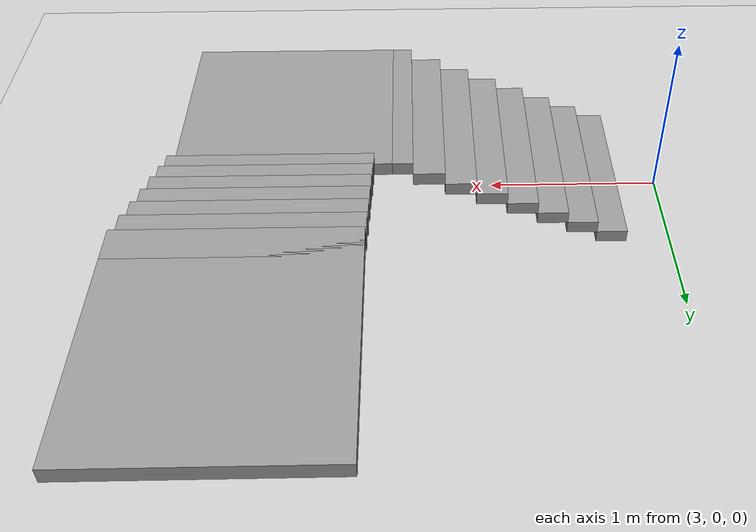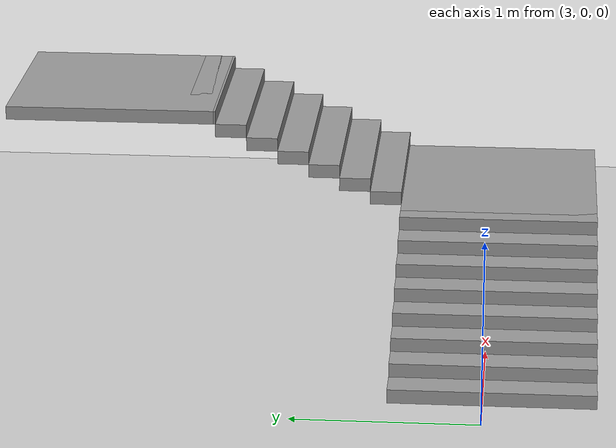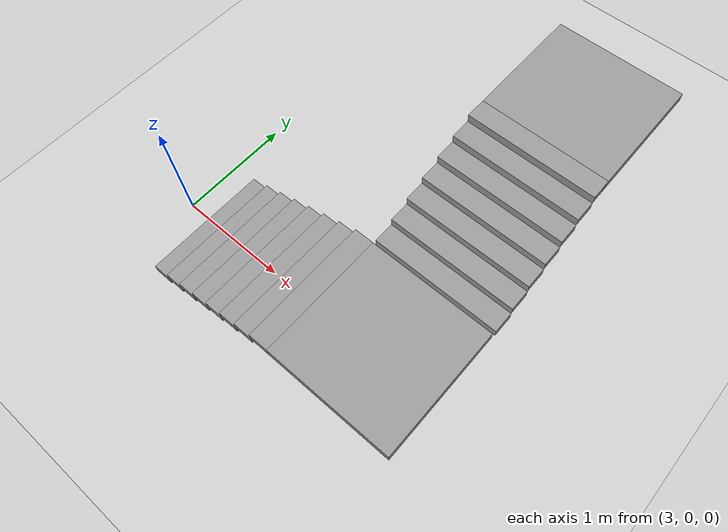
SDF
<?xml version="1.0" ?>
<sdf version="1.4">
  <world name="default">
    <include>
      <uri>model://ground_plane</uri>
    </include>

    <include>
      <uri>model://sun</uri>
    </include>
    <include>
      <uri>model://stairs3</uri>
    </include>

    <gui>
      <plugin name="keyboard" filename="libKeyboardGUIPlugin.so"/>
    </gui>
  </world>
</sdf>

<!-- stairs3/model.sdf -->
<sdf version='1.6'>
 <model name='stairs_environment3'>
            <pose frame=''>5 -0.05 0 0 0 1.57</pose>
            <link name='Stairs_3'>
                <visual name='Stairs_3_Visual_0'>
                    <pose frame=''>0 1.6625 0.0375 0 -0 0</pose>
                    <geometry>
                        <box>
                            <size>1.1 0.175 0.075</size>
                        </box>
                    </geometry>
                    <material>
                        <script>
                            <uri>file://media/materials/scripts/gazebo.material</uri>
                            <name>Gazebo/Grey</name>
                        </script>
                        <ambient>1 1 1 1</ambient>
                    </material>
                    <meta>
                        <layer>0</layer>
                    </meta>
                </visual>
                <collision name='Stairs_3_Collision_0'>
                    <geometry>
                        <box>
                            <size>1.1 0.175 0.075</size>
                        </box>
                    </geometry>
                    <pose frame=''>0 1.6625 0.0375 0 -0 0</pose>
                    <surface>
                      <friction>
                      <ode>
                          <mu>0.95</mu>
                          <mu2>0.95</mu2>
                      </ode>
                      </friction>
                  </surface>
                </collision>
                <visual name='Stairs_3_Visual_1'>
                    <pose frame=''>0 1.4875 0.1125 0 -0 0</pose>
                    <geometry>
                        <box>
                            <size>1.1 0.175 0.075</size>
                        </box>
                    </geometry>
                    <material>
                        <script>
                            <uri>file://media/materials/scripts/gazebo.material</uri>
                            <name>Gazebo/Grey</name>
                        </script>
                        <ambient>1 1 1 1</ambient>
                    </material>
                    <meta>
                        <layer>0</layer>
                    </meta>
                </visual>
                <collision name='Stairs_3_Collision_1'>
                    <geometry>
                        <box>
                            <size>1.1 0.175 0.075</size>
                        </box>
                    </geometry>
                    <pose frame=''>0 1.4875 0.1125 0 -0 0</pose>
                    <surface>
                      <friction>
                      <ode>
                          <mu>0.95</mu>
                          <mu2>0.95</mu2>
                      </ode>
                      </friction>
                  </surface>
                </collision>
                <visual name='Stairs_3_Visual_2'>
                    <pose frame=''>0 1.3125 0.1875 0 -0 0</pose>
                    <geometry>
                        <box>
                            <size>1.1 0.175 0.075</size>
                        </box>
                    </geometry>
                    <material>
                        <script>
                            <uri>file://media/materials/scripts/gazebo.material</uri>
                            <name>Gazebo/Grey</name>
                        </script>
                        <ambient>1 1 1 1</ambient>
                    </material>
                    <meta>
                        <layer>0</layer>
                    </meta>
                </visual>
                <collision name='Stairs_3_Collision_2'>
                    <geometry>
                        <box>
                            <size>1.1 0.175 0.075</size>
                        </box>
                    </geometry>
                    <pose frame=''>0 1.3125 0.1875 0 -0 0</pose>
                    <surface>
                      <friction>
                      <ode>
                          <mu>0.95</mu>
                          <mu2>0.95</mu2>
                      </ode>
                      </friction>
                  </surface>
                </collision>
                <visual name='Stairs_3_Visual_3'>
                    <pose frame=''>0 1.1375 0.2625 0 -0 0</pose>
                    <geometry>
                        <box>
                            <size>1.1 0.175 0.075</size>
                        </box>
                    </geometry>
                    <material>
                        <script>
                            <uri>file://media/materials/scripts/gazebo.material</uri>
                            <name>Gazebo/Grey</name>
                        </script>
                        <ambient>1 1 1 1</ambient>
                    </material>
                    <meta>
                        <layer>0</layer>
                    </meta>
                </visual>
                <collision name='Stairs_3_Collision_3'>
                    <geometry>
                        <box>
                            <size>1.1 0.175 0.075</size>
                        </box>
                    </geometry>
                    <pose frame=''>0 1.1375 0.2625 0 -0 0</pose>
                    <surface>
                      <friction>
                      <ode>
                          <mu>0.95</mu>
                          <mu2>0.95</mu2>
                      </ode>
                      </friction>
                  </surface>
                </collision>
                <visual name='Stairs_3_Visual_4'>
                    <pose frame=''>0 0.9625 0.3375 0 -0 0</pose>
                    <geometry>
                        <box>
                            <size>1.1 0.175 0.075</size>
                        </box>
                    </geometry>
                    <material>
                        <script>
                            <uri>file://media/materials/scripts/gazebo.material</uri>
                            <name>Gazebo/Grey</name>
                        </script>
                        <ambient>1 1 1 1</ambient>
                    </material>
                    <meta>
                        <layer>0</layer>
                    </meta>
                </visual>
                <collision name='Stairs_3_Collision_4'>
                    <geometry>
                        <box>
                            <size>1.1 0.175 0.075</size>
                        </box>
                    </geometry>
                    <pose frame=''>0 0.9625 0.3375 0 -0 0</pose>
                    <surface>
                      <friction>
                      <ode>
                          <mu>0.95</mu>
                          <mu2>0.95</mu2>
                      </ode>
                      </friction>
                  </surface>
                </collision>
                <visual name='Stairs_3_Visual_5'>
                    <pose frame=''>0 0.7875 0.4125 0 -0 0</pose>
                    <geometry>
                        <box>
                            <size>1.1 0.175 0.075</size>
                        </box>
                    </geometry>
                    <material>
                        <script>
                            <uri>file://media/materials/scripts/gazebo.material</uri>
                            <name>Gazebo/Grey</name>
                        </script>
                        <ambient>1 1 1 1</ambient>
                    </material>
                    <meta>
                        <layer>0</layer>
                    </meta>
                </visual>
                <collision name='Stairs_3_Collision_5'>
                    <geometry>
                        <box>
                            <size>1.1 0.175 0.075</size>
                        </box>
                    </geometry>
                    <pose frame=''>0 0.7875 0.4125 0 -0 0</pose>
                    <surface>
                      <friction>
                      <ode>
                          <mu>0.95</mu>
                          <mu2>0.95</mu2>
                      </ode>
                      </friction>
                  </surface>
                </collision>
                <visual name='Stairs_3_Visual_6'>
                    <pose frame=''>0 0.6125 0.4875 0 -0 0</pose>
                    <geometry>
                        <box>
                            <size>1.1 0.175 0.075</size>
                        </box>
                    </geometry>
                    <material>
                        <script>
                            <uri>file://media/materials/scripts/gazebo.material</uri>
                            <name>Gazebo/Grey</name>
                        </script>
                        <ambient>1 1 1 1</ambient>
                    </material>
                    <meta>
                        <layer>0</layer>
                    </meta>
                </visual>
                <collision name='Stairs_3_Collision_6'>
                    <geometry>
                        <box>
                            <size>1.1 0.175 0.075</size>
                        </box>
                    </geometry>
                    <pose frame=''>0 0.6125 0.4875 0 -0 0</pose>
                    <surface>
                      <friction>
                      <ode>
                          <mu>0.95</mu>
                          <mu2>0.95</mu2>
                      </ode>
                      </friction>
                  </surface>
                </collision>
                <visual name='Stairs_3_Visual_7'>
                    <pose frame=''>0 0.4375 0.5625 0 -0 0</pose>
                    <geometry>
                        <box>
                            <size>1.1 0.175 0.075</size>
                        </box>
                    </geometry>
                    <material>
                        <script>
                            <uri>file://media/materials/scripts/gazebo.material</uri>
                            <name>Gazebo/Grey</name>
                        </script>
                        <ambient>1 1 1 1</ambient>
                    </material>
                    <meta>
                        <layer>0</layer>
                    </meta>
                </visual>
                <collision name='Stairs_3_Collision_7'>
                    <geometry>
                        <box>
                            <size>1.1 0.175 0.075</size>
                        </box>
                    </geometry>
                    <pose frame=''>0 0.4375 0.5625 0 -0 0</pose>
                    <surface>
                      <friction>
                      <ode>
                          <mu>0.95</mu>
                          <mu2>0.95</mu2>
                      </ode>
                      </friction>
                  </surface>
                </collision>
                <visual name='Stairs_3_Visual_8'>
                    <pose frame=''>0.6375 -0.2325 0.6375 0 -0 1.5707963</pose>
                    <geometry>
                        <box>
                            <size>1.1 0.175 0.075</size>
                        </box>
                    </geometry>
                    <material>
                        <script>
                            <uri>file://media/materials/scripts/gazebo.material</uri>
                            <name>Gazebo/Grey</name>
                        </script>
                        <ambient>1 1 1 1</ambient>
                    </material>
                    <meta>
                        <layer>0</layer>
                    </meta>
                </visual>
                <collision name='Stairs_3_Collision_8'>
                    <geometry>
                        <box>
                            <size>1.1 0.175 0.075</size>
                        </box>
                    </geometry>
                    <pose frame=''>0.6375 -0.2325 0.6375 0 -0 1.5707963</pose>
                    <surface>
                      <friction>
                      <ode>
                          <mu>0.95</mu>
                          <mu2>0.95</mu2>
                      </ode>
                      </friction>
                  </surface>
                </collision>
                <visual name='Stairs_3_Visual_9'>
                    <pose frame=''>0.8125 -0.2325 0.7125 0 -0 1.5707963</pose>
                    <geometry>
                        <box>
                            <size>1.1 0.175 0.075</size>
                        </box>
                    </geometry>
                    <material>
                        <script>
                            <uri>file://media/materials/scripts/gazebo.material</uri>
                            <name>Gazebo/Grey</name>
                        </script>
                        <ambient>1 1 1 1</ambient>
                    </material>
                    <meta>
                        <layer>0</layer>
                    </meta>
                </visual>
                <collision name='Stairs_3_Collision_9'>
                    <geometry>
                        <box>
                            <size>1.1 0.175 0.075</size>
                        </box>
                    </geometry>
                    <pose frame=''>0.8125 -0.2325 0.7125 0 -0 1.5707963</pose>
                    <surface>
                      <friction>
                      <ode>
                          <mu>0.95</mu>
                          <mu2>0.95</mu2>
                      </ode>
                      </friction>
                  </surface>
                </collision>
                <visual name='Stairs_3_Visual_10'>
                    <pose frame=''>0.9875 -0.2325 0.7875 0 -0 1.5707963</pose>
                    <geometry>
                        <box>
                            <size>1.1 0.175 0.075</size>
                        </box>
                    </geometry>
                    <material>
                        <script>
                            <uri>file://media/materials/scripts/gazebo.material</uri>
                            <name>Gazebo/Grey</name>
                        </script>
                        <ambient>1 1 1 1</ambient>
                    </material>
                    <meta>
                        <layer>0</layer>
                    </meta>
                </visual>
                <collision name='Stairs_3_Collision_10'>
                    <geometry>
                        <box>
                            <size>1.1 0.175 0.075</size>
                        </box>
                    </geometry>
                    <pose frame=''>0.9875 -0.2325 0.7875 0 -0 1.5707963</pose>
                    <surface>
                      <friction>
                      <ode>
                          <mu>0.95</mu>
                          <mu2>0.95</mu2>
                      </ode>
                      </friction>
                  </surface>
                </collision>
                <visual name='Stairs_3_Visual_11'>
                    <pose frame=''>1.1625 -0.2325 0.8625 0 -0 1.5707963</pose>
                    <geometry>
                        <box>
                            <size>1.1 0.175 0.075</size>
                        </box>
                    </geometry>
                    <material>
                        <script>
                            <uri>file://media/materials/scripts/gazebo.material</uri>
                            <name>Gazebo/Grey</name>
                        </script>
                        <ambient>1 1 1 1</ambient>
                    </material>
                    <meta>
                        <layer>0</layer>
                    </meta>
                </visual>
                <collision name='Stairs_3_Collision_11'>
                    <geometry>
                        <box>
                            <size>1.1 0.175 0.075</size>
                        </box>
                    </geometry>
                    <pose frame=''>1.1625 -0.2325 0.8625 0 -0 1.5707963</pose>
                    <surface>
                      <friction>
                      <ode>
                          <mu>0.95</mu>
                          <mu2>0.95</mu2>
                      </ode>
                      </friction>
                  </surface>
                </collision>
                <visual name='Stairs_3_Visual_12'>
                    <pose frame=''>1.3375 -0.2325 0.9375 0 -0 1.5707963</pose>
                    <geometry>
                        <box>
                            <size>1.1 0.175 0.075</size>
                        </box>
                    </geometry>
                    <material>
                        <script>
                            <uri>file://media/materials/scripts/gazebo.material</uri>
                            <name>Gazebo/Grey</name>
                        </script>
                        <ambient>1 1 1 1</ambient>
                    </material>
                    <meta>
                        <layer>0</layer>
                    </meta>
                </visual>
                <collision name='Stairs_3_Collision_12'>
                    <geometry>
                        <box>
                            <size>1.1 0.175 0.075</size>
                        </box>
                    </geometry>
                    <pose frame=''>1.3375 -0.2325 0.9375 0 -0 1.5707963</pose>
                    <surface>
                      <friction>
                      <ode>
                          <mu>0.95</mu>
                          <mu2>0.95</mu2>
                      </ode>
                      </friction>
                  </surface>
                </collision>
                <visual name='Stairs_3_Visual_13'>
                    <pose frame=''>1.5125 -0.2325 1.0125 0 -0 1.5707963</pose>
                    <geometry>
                        <box>
                            <size>1.1 0.175 0.075</size>
                        </box>
                    </geometry>
                    <material>
                        <script>
                            <uri>file://media/materials/scripts/gazebo.material</uri>
                            <name>Gazebo/Grey</name>
                        </script>
                        <ambient>1 1 1 1</ambient>
                    </material>
                    <meta>
                        <layer>0</layer>
                    </meta>
                </visual>
                <collision name='Stairs_3_Collision_13'>
                    <geometry>
                        <box>
                            <size>1.1 0.175 0.075</size>
                        </box>
                    </geometry>
                    <pose frame=''>1.5125 -0.2325 1.0125 0 -0 1.5707963</pose>
                    <surface>
                      <friction>
                      <ode>
                          <mu>0.95</mu>
                          <mu2>0.95</mu2>
                      </ode>
                      </friction>
                  </surface>
                </collision>
                <visual name='Stairs_3_Visual_14'>
                    <pose frame=''>1.6875 -0.2325 1.0875 0 -0 1.5707963</pose>
                    <geometry>
                        <box>
                            <size>1.1 0.175 0.075</size>
                        </box>
                    </geometry>
                    <material>
                        <script>
                            <uri>file://media/materials/scripts/gazebo.material</uri>
                            <name>Gazebo/Grey</name>
                        </script>
                        <ambient>1 1 1 1</ambient>
                    </material>
                    <meta>
                        <layer>0</layer>
                    </meta>
                </visual>
                <collision name='Stairs_3_Collision_14'>
                    <geometry>
                        <box>
                            <size>1.1 0.175 0.075</size>
                        </box>
                    </geometry>
                    <pose frame=''>1.6875 -0.2325 1.0875 0 -0 1.5707963</pose>
                    <surface>
                      <friction>
                      <ode>
                          <mu>0.95</mu>
                          <mu2>0.95</mu2>
                      </ode>
                      </friction>
                  </surface>
                </collision>
                <visual name='Stairs_3_Base_mid_visual'>
                    <pose frame=''>0 -0.175 0.5625 0 0 0</pose>
                    <geometry>
                        <box>
                            <size>1.1 1.175 0.075</size>
                        </box>
                    </geometry>
                    <material>
                        <script>
                            <uri>file://media/materials/scripts/gazebo.material</uri>
                            <name>Gazebo/Grey</name>
                        </script>
                        <ambient>1 1 1 1</ambient>
                    </material>
                    <meta>
                        <layer>0</layer>
                    </meta>
                </visual>
                <collision name='Stairs_3_Base_mid_collision'>
                    <geometry>
                        <box>
                            <size>1.1 1.175 0.075</size>
                        </box>
                    </geometry>
                    <pose frame=''>0 -0.175 0.5625 0 0 0</pose>
                    <surface>
                      <friction>
                      <ode>
                          <mu>0.95</mu>
                          <mu2>0.95</mu2>
                      </ode>
                      </friction>
                  </surface>
                </collision>
                <visual name='Stairs_3_Base_top_visual'>
                    <pose frame=''>2.2 -0.2325 1.0875 0 0 0</pose>
                    <geometry>
                        <box>
                            <size>1.175 1.1 0.075</size>
                        </box>
                    </geometry>
                    <material>
                        <script>
                            <uri>file://media/materials/scripts/gazebo.material</uri>
                            <name>Gazebo/Grey</name>
                        </script>
                        <ambient>1 1 1 1</ambient>
                    </material>
                    <meta>
                        <layer>0</layer>
                    </meta>
                </visual>
                <collision name='Stairs_3_Base_top_collision'>
                    <geometry>
                        <box>
                            <size>1.175 1.1 0.075</size>
                        </box>
                    </geometry>
                    <pose frame=''>2.2 -0.2325 1.0875 0 0 0</pose>
                    <surface>
                      <friction>
                      <ode>
                          <mu>0.95</mu>
                          <mu2>0.95</mu2>
                      </ode>
                      </friction>
                  </surface>
                </collision>
            </link>
            <static>1</static>
        </model>
        </sdf>
